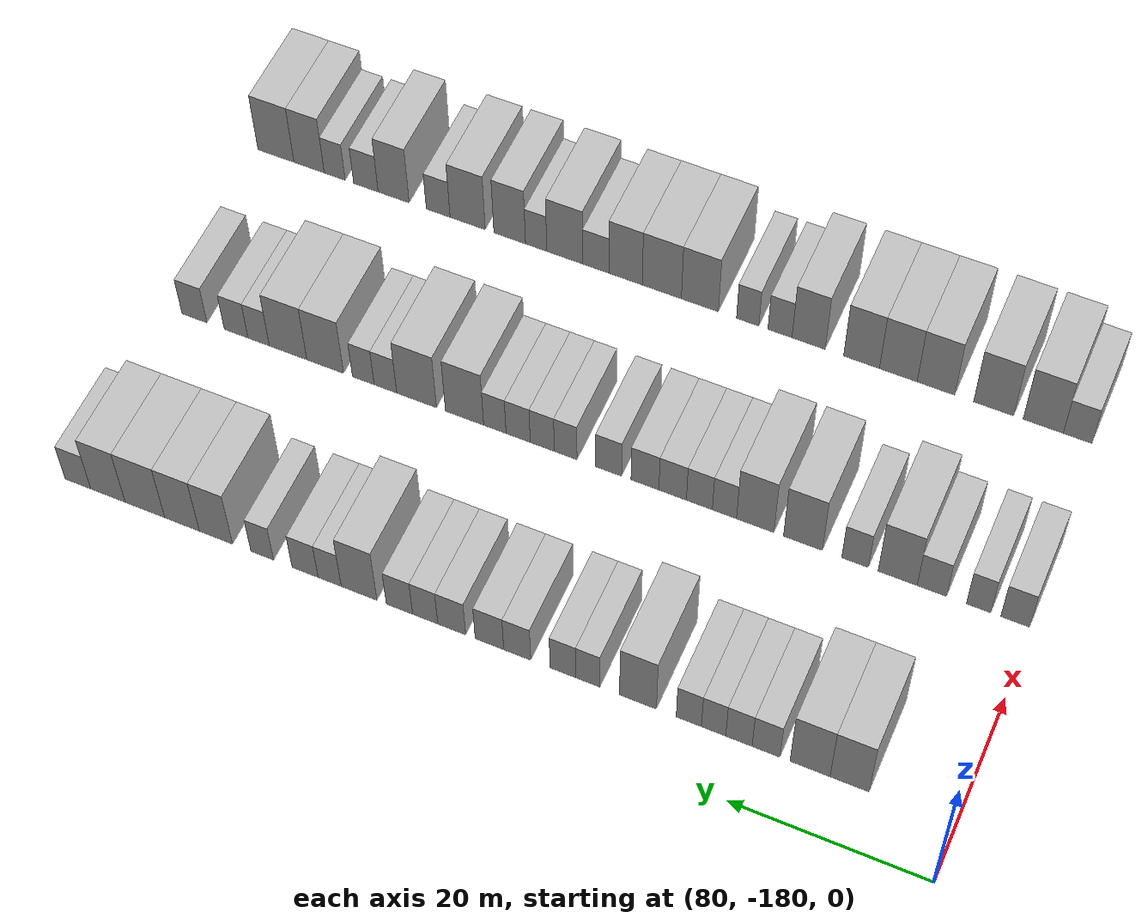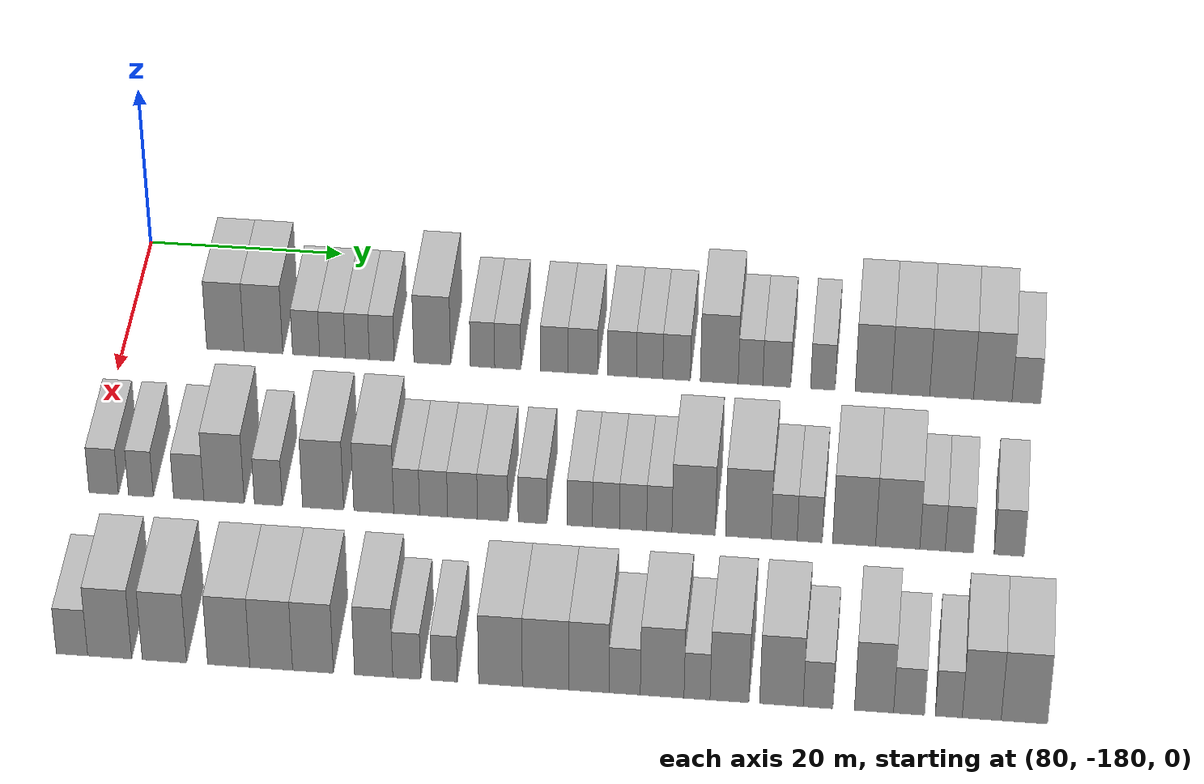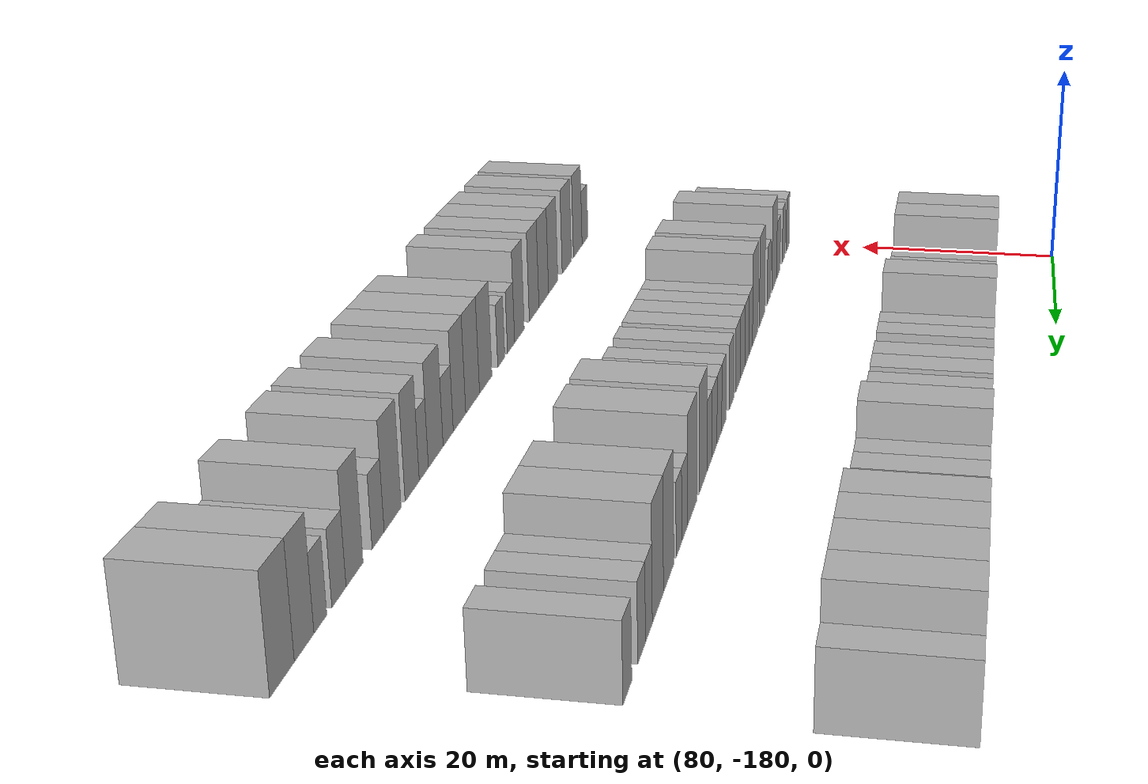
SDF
<sdf version="1.6">
 <world name="default">
  <model name="building_619">
   <static>1</static>
   <pose>91.0000 -169.6793 0 0.000000 0.000000 0.000000</pose>
   <link name="link">
    <pose>0 0 4.50 0 0 0</pose>
    <collision name="collision"><geometry><box><size>10.0000 3.8224 9.0000</size></box></geometry></collision>
    <visual name="visual">
     <cast_shadows>0</cast_shadows>
     <geometry><box><size>10.0000 3.8224 9.0000</size></box></geometry>
     <material>
      <script>
       <uri>model://HANNAS_wall/materials/scripts</uri>
       <uri>model://HANNAS_wall/materials/textures</uri>
       <name>vrc/HANNAS_wall</name>
      </script>
     </material>
    </visual>
   </link>
  </model>
  <model name="building_620">
   <static>1</static>
   <pose>91.0000 -165.8013 0 0.000000 0.000000 0.000000</pose>
   <link name="link">
    <pose>0 0 4.50 0 0 0</pose>
    <collision name="collision"><geometry><box><size>10.0000 3.9335 9.0000</size></box></geometry></collision>
    <visual name="visual">
     <cast_shadows>0</cast_shadows>
     <geometry><box><size>10.0000 3.9335 9.0000</size></box></geometry>
     <material>
      <script>
       <uri>model://HANNAS_wall/materials/scripts</uri>
       <uri>model://HANNAS_wall/materials/textures</uri>
       <name>vrc/HANNAS_wall</name>
      </script>
     </material>
    </visual>
   </link>
  </model>
  <model name="building_621">
   <static>1</static>
   <pose>91.0000 -161.4540 0 0.000000 0.000000 0.000000</pose>
   <link name="link">
    <pose>0 0 3.00 0 0 0</pose>
    <collision name="collision"><geometry><box><size>10.0000 2.7611 6.0000</size></box></geometry></collision>
    <visual name="visual">
     <cast_shadows>0</cast_shadows>
     <geometry><box><size>10.0000 2.7611 6.0000</size></box></geometry>
     <material>
      <script>
       <uri>model://HANNAS_wall/materials/scripts</uri>
       <uri>model://HANNAS_wall/materials/textures</uri>
       <name>vrc/HANNAS_wall</name>
      </script>
     </material>
    </visual>
   </link>
  </model>
  <model name="building_622">
   <static>1</static>
   <pose>91.0000 -158.7608 0 0.000000 0.000000 0.000000</pose>
   <link name="link">
    <pose>0 0 3.00 0 0 0</pose>
    <collision name="collision"><geometry><box><size>10.0000 2.6254 6.0000</size></box></geometry></collision>
    <visual name="visual">
     <cast_shadows>0</cast_shadows>
     <geometry><box><size>10.0000 2.6254 6.0000</size></box></geometry>
     <material>
      <script>
       <uri>model://HANNAS_wall/materials/scripts</uri>
       <uri>model://HANNAS_wall/materials/textures</uri>
       <name>vrc/HANNAS_wall</name>
      </script>
     </material>
    </visual>
   </link>
  </model>
  <model name="building_623">
   <static>1</static>
   <pose>91.0000 -156.2324 0 0.000000 0.000000 0.000000</pose>
   <link name="link">
    <pose>0 0 3.00 0 0 0</pose>
    <collision name="collision"><geometry><box><size>10.0000 2.4313 6.0000</size></box></geometry></collision>
    <visual name="visual">
     <cast_shadows>0</cast_shadows>
     <geometry><box><size>10.0000 2.4313 6.0000</size></box></geometry>
     <material>
      <script>
       <uri>model://HANNAS_wall/materials/scripts</uri>
       <uri>model://HANNAS_wall/materials/textures</uri>
       <name>vrc/HANNAS_wall</name>
      </script>
     </material>
    </visual>
   </link>
  </model>
  <model name="building_624">
   <static>1</static>
   <pose>91.0000 -153.7548 0 0.000000 0.000000 0.000000</pose>
   <link name="link">
    <pose>0 0 3.00 0 0 0</pose>
    <collision name="collision"><geometry><box><size>10.0000 2.5239 6.0000</size></box></geometry></collision>
    <visual name="visual">
     <cast_shadows>0</cast_shadows>
     <geometry><box><size>10.0000 2.5239 6.0000</size></box></geometry>
     <material>
      <script>
       <uri>model://HANNAS_wall/materials/scripts</uri>
       <uri>model://HANNAS_wall/materials/textures</uri>
       <name>vrc/HANNAS_wall</name>
      </script>
     </material>
    </visual>
   </link>
  </model>
  <model name="building_625">
   <static>1</static>
   <pose>91.0000 -148.6278 0 0.000000 0.000000 0.000000</pose>
   <link name="link">
    <pose>0 0 4.50 0 0 0</pose>
    <collision name="collision"><geometry><box><size>10.0000 3.7301 9.0000</size></box></geometry></collision>
    <visual name="visual">
     <cast_shadows>0</cast_shadows>
     <geometry><box><size>10.0000 3.7301 9.0000</size></box></geometry>
     <material>
      <script>
       <uri>model://HANNAS_wall/materials/scripts</uri>
       <uri>model://HANNAS_wall/materials/textures</uri>
       <name>vrc/HANNAS_wall</name>
      </script>
     </material>
    </visual>
   </link>
  </model>
  <model name="building_626">
   <static>1</static>
   <pose>91.0000 -143.5301 0 0.000000 0.000000 0.000000</pose>
   <link name="link">
    <pose>0 0 3.00 0 0 0</pose>
    <collision name="collision"><geometry><box><size>10.0000 2.4655 6.0000</size></box></geometry></collision>
    <visual name="visual">
     <cast_shadows>0</cast_shadows>
     <geometry><box><size>10.0000 2.4655 6.0000</size></box></geometry>
     <material>
      <script>
       <uri>model://HANNAS_wall/materials/scripts</uri>
       <uri>model://HANNAS_wall/materials/textures</uri>
       <name>vrc/HANNAS_wall</name>
      </script>
     </material>
    </visual>
   </link>
  </model>
  <model name="building_627">
   <static>1</static>
   <pose>91.0000 -140.9779 0 0.000000 0.000000 0.000000</pose>
   <link name="link">
    <pose>0 0 3.00 0 0 0</pose>
    <collision name="collision"><geometry><box><size>10.0000 2.6389 6.0000</size></box></geometry></collision>
    <visual name="visual">
     <cast_shadows>0</cast_shadows>
     <geometry><box><size>10.0000 2.6389 6.0000</size></box></geometry>
     <material>
      <script>
       <uri>model://HANNAS_wall/materials/scripts</uri>
       <uri>model://HANNAS_wall/materials/textures</uri>
       <name>vrc/HANNAS_wall</name>
      </script>
     </material>
    </visual>
   </link>
  </model>
  <model name="building_628">
   <static>1</static>
   <pose>91.0000 -136.2574 0 0.000000 0.000000 0.000000</pose>
   <link name="link">
    <pose>0 0 3.00 0 0 0</pose>
    <collision name="collision"><geometry><box><size>10.0000 2.8020 6.0000</size></box></geometry></collision>
    <visual name="visual">
     <cast_shadows>0</cast_shadows>
     <geometry><box><size>10.0000 2.8020 6.0000</size></box></geometry>
     <material>
      <script>
       <uri>model://HANNAS_wall/materials/scripts</uri>
       <uri>model://HANNAS_wall/materials/textures</uri>
       <name>vrc/HANNAS_wall</name>
      </script>
     </material>
    </visual>
   </link>
  </model>
  <model name="building_629">
   <static>1</static>
   <pose>91.0000 -133.3731 0 0.000000 0.000000 0.000000</pose>
   <link name="link">
    <pose>0 0 3.00 0 0 0</pose>
    <collision name="collision"><geometry><box><size>10.0000 2.9665 6.0000</size></box></geometry></collision>
    <visual name="visual">
     <cast_shadows>0</cast_shadows>
     <geometry><box><size>10.0000 2.9665 6.0000</size></box></geometry>
     <material>
      <script>
       <uri>model://HANNAS_wall/materials/scripts</uri>
       <uri>model://HANNAS_wall/materials/textures</uri>
       <name>vrc/HANNAS_wall</name>
      </script>
     </material>
    </visual>
   </link>
  </model>
  <model name="building_630">
   <static>1</static>
   <pose>91.0000 -129.4309 0 0.000000 0.000000 0.000000</pose>
   <link name="link">
    <pose>0 0 3.00 0 0 0</pose>
    <collision name="collision"><geometry><box><size>10.0000 2.9178 6.0000</size></box></geometry></collision>
    <visual name="visual">
     <cast_shadows>0</cast_shadows>
     <geometry><box><size>10.0000 2.9178 6.0000</size></box></geometry>
     <material>
      <script>
       <uri>model://HANNAS_wall/materials/scripts</uri>
       <uri>model://HANNAS_wall/materials/textures</uri>
       <name>vrc/HANNAS_wall</name>
      </script>
     </material>
    </visual>
   </link>
  </model>
  <model name="building_631">
   <static>1</static>
   <pose>91.0000 -126.6465 0 0.000000 0.000000 0.000000</pose>
   <link name="link">
    <pose>0 0 3.00 0 0 0</pose>
    <collision name="collision"><geometry><box><size>10.0000 2.6511 6.0000</size></box></geometry></collision>
    <visual name="visual">
     <cast_shadows>0</cast_shadows>
     <geometry><box><size>10.0000 2.6511 6.0000</size></box></geometry>
     <material>
      <script>
       <uri>model://HANNAS_wall/materials/scripts</uri>
       <uri>model://HANNAS_wall/materials/textures</uri>
       <name>vrc/HANNAS_wall</name>
      </script>
     </material>
    </visual>
   </link>
  </model>
  <model name="building_632">
   <static>1</static>
   <pose>91.0000 -123.9323 0 0.000000 0.000000 0.000000</pose>
   <link name="link">
    <pose>0 0 3.00 0 0 0</pose>
    <collision name="collision"><geometry><box><size>10.0000 2.7771 6.0000</size></box></geometry></collision>
    <visual name="visual">
     <cast_shadows>0</cast_shadows>
     <geometry><box><size>10.0000 2.7771 6.0000</size></box></geometry>
     <material>
      <script>
       <uri>model://HANNAS_wall/materials/scripts</uri>
       <uri>model://HANNAS_wall/materials/textures</uri>
       <name>vrc/HANNAS_wall</name>
      </script>
     </material>
    </visual>
   </link>
  </model>
  <model name="building_633">
   <static>1</static>
   <pose>91.0000 -119.6410 0 0.000000 0.000000 0.000000</pose>
   <link name="link">
    <pose>0 0 4.50 0 0 0</pose>
    <collision name="collision"><geometry><box><size>10.0000 3.8055 9.0000</size></box></geometry></collision>
    <visual name="visual">
     <cast_shadows>0</cast_shadows>
     <geometry><box><size>10.0000 3.8055 9.0000</size></box></geometry>
     <material>
      <script>
       <uri>model://HANNAS_wall/materials/scripts</uri>
       <uri>model://HANNAS_wall/materials/textures</uri>
       <name>vrc/HANNAS_wall</name>
      </script>
     </material>
    </visual>
   </link>
  </model>
  <model name="building_634">
   <static>1</static>
   <pose>91.0000 -116.4988 0 0.000000 0.000000 0.000000</pose>
   <link name="link">
    <pose>0 0 3.00 0 0 0</pose>
    <collision name="collision"><geometry><box><size>10.0000 2.4789 6.0000</size></box></geometry></collision>
    <visual name="visual">
     <cast_shadows>0</cast_shadows>
     <geometry><box><size>10.0000 2.4789 6.0000</size></box></geometry>
     <material>
      <script>
       <uri>model://HANNAS_wall/materials/scripts</uri>
       <uri>model://HANNAS_wall/materials/textures</uri>
       <name>vrc/HANNAS_wall</name>
      </script>
     </material>
    </visual>
   </link>
  </model>
  <model name="building_635">
   <static>1</static>
   <pose>91.0000 -113.8618 0 0.000000 0.000000 0.000000</pose>
   <link name="link">
    <pose>0 0 3.00 0 0 0</pose>
    <collision name="collision"><geometry><box><size>10.0000 2.7952 6.0000</size></box></geometry></collision>
    <visual name="visual">
     <cast_shadows>0</cast_shadows>
     <geometry><box><size>10.0000 2.7952 6.0000</size></box></geometry>
     <material>
      <script>
       <uri>model://HANNAS_wall/materials/scripts</uri>
       <uri>model://HANNAS_wall/materials/textures</uri>
       <name>vrc/HANNAS_wall</name>
      </script>
     </material>
    </visual>
   </link>
  </model>
  <model name="building_636">
   <static>1</static>
   <pose>91.0000 -109.2357 0 0.000000 0.000000 0.000000</pose>
   <link name="link">
    <pose>0 0 3.00 0 0 0</pose>
    <collision name="collision"><geometry><box><size>10.0000 2.4570 6.0000</size></box></geometry></collision>
    <visual name="visual">
     <cast_shadows>0</cast_shadows>
     <geometry><box><size>10.0000 2.4570 6.0000</size></box></geometry>
     <material>
      <script>
       <uri>model://HANNAS_wall/materials/scripts</uri>
       <uri>model://HANNAS_wall/materials/textures</uri>
       <name>vrc/HANNAS_wall</name>
      </script>
     </material>
    </visual>
   </link>
  </model>
  <model name="building_637">
   <static>1</static>
   <pose>91.0000 -104.1882 0 0.000000 0.000000 0.000000</pose>
   <link name="link">
    <pose>0 0 4.50 0 0 0</pose>
    <collision name="collision"><geometry><box><size>10.0000 3.6380 9.0000</size></box></geometry></collision>
    <visual name="visual">
     <cast_shadows>0</cast_shadows>
     <geometry><box><size>10.0000 3.6380 9.0000</size></box></geometry>
     <material>
      <script>
       <uri>model://HANNAS_wall/materials/scripts</uri>
       <uri>model://HANNAS_wall/materials/textures</uri>
       <name>vrc/HANNAS_wall</name>
      </script>
     </material>
    </visual>
   </link>
  </model>
  <model name="building_638">
   <static>1</static>
   <pose>91.0000 -100.4628 0 0.000000 0.000000 0.000000</pose>
   <link name="link">
    <pose>0 0 4.50 0 0 0</pose>
    <collision name="collision"><geometry><box><size>10.0000 3.8127 9.0000</size></box></geometry></collision>
    <visual name="visual">
     <cast_shadows>0</cast_shadows>
     <geometry><box><size>10.0000 3.8127 9.0000</size></box></geometry>
     <material>
      <script>
       <uri>model://HANNAS_wall/materials/scripts</uri>
       <uri>model://HANNAS_wall/materials/textures</uri>
       <name>vrc/HANNAS_wall</name>
      </script>
     </material>
    </visual>
   </link>
  </model>
  <model name="building_639">
   <static>1</static>
   <pose>91.0000 -96.3690 0 0.000000 0.000000 0.000000</pose>
   <link name="link">
    <pose>0 0 4.50 0 0 0</pose>
    <collision name="collision"><geometry><box><size>10.0000 4.3750 9.0000</size></box></geometry></collision>
    <visual name="visual">
     <cast_shadows>0</cast_shadows>
     <geometry><box><size>10.0000 4.3750 9.0000</size></box></geometry>
     <material>
      <script>
       <uri>model://HANNAS_wall/materials/scripts</uri>
       <uri>model://HANNAS_wall/materials/textures</uri>
       <name>vrc/HANNAS_wall</name>
      </script>
     </material>
    </visual>
   </link>
  </model>
  <model name="building_640">
   <static>1</static>
   <pose>91.0000 -92.2633 0 0.000000 0.000000 0.000000</pose>
   <link name="link">
    <pose>0 0 4.50 0 0 0</pose>
    <collision name="collision"><geometry><box><size>10.0000 3.8365 9.0000</size></box></geometry></collision>
    <visual name="visual">
     <cast_shadows>0</cast_shadows>
     <geometry><box><size>10.0000 3.8365 9.0000</size></box></geometry>
     <material>
      <script>
       <uri>model://HANNAS_wall/materials/scripts</uri>
       <uri>model://HANNAS_wall/materials/textures</uri>
       <name>vrc/HANNAS_wall</name>
      </script>
     </material>
    </visual>
   </link>
  </model>
  <model name="building_641">
   <static>1</static>
   <pose>91.0000 -88.9086 0 0.000000 0.000000 0.000000</pose>
   <link name="link">
    <pose>0 0 3.00 0 0 0</pose>
    <collision name="collision"><geometry><box><size>10.0000 2.8729 6.0000</size></box></geometry></collision>
    <visual name="visual">
     <cast_shadows>0</cast_shadows>
     <geometry><box><size>10.0000 2.8729 6.0000</size></box></geometry>
     <material>
      <script>
       <uri>model://HANNAS_wall/materials/scripts</uri>
       <uri>model://HANNAS_wall/materials/textures</uri>
       <name>vrc/HANNAS_wall</name>
      </script>
     </material>
    </visual>
   </link>
  </model>
  <model name="building_803">
   <static>1</static>
   <pose>113.0000 -178.2701 0 0.000000 0.000000 0.000000</pose>
   <link name="link">
    <pose>0 0 3.00 0 0 0</pose>
    <collision name="collision"><geometry><box><size>10.0000 2.8882 6.0000</size></box></geometry></collision>
    <visual name="visual">
     <cast_shadows>0</cast_shadows>
     <geometry><box><size>10.0000 2.8882 6.0000</size></box></geometry>
     <material>
      <script>
       <uri>model://HANNAS_wall/materials/scripts</uri>
       <uri>model://HANNAS_wall/materials/textures</uri>
       <name>vrc/HANNAS_wall</name>
      </script>
     </material>
    </visual>
   </link>
  </model>
  <model name="building_804">
   <static>1</static>
   <pose>113.0000 -174.5984 0 0.000000 0.000000 0.000000</pose>
   <link name="link">
    <pose>0 0 3.00 0 0 0</pose>
    <collision name="collision"><geometry><box><size>10.0000 2.4551 6.0000</size></box></geometry></collision>
    <visual name="visual">
     <cast_shadows>0</cast_shadows>
     <geometry><box><size>10.0000 2.4551 6.0000</size></box></geometry>
     <material>
      <script>
       <uri>model://HANNAS_wall/materials/scripts</uri>
       <uri>model://HANNAS_wall/materials/textures</uri>
       <name>vrc/HANNAS_wall</name>
      </script>
     </material>
    </visual>
   </link>
  </model>
  <model name="building_805">
   <static>1</static>
   <pose>113.0000 -169.8776 0 0.000000 0.000000 0.000000</pose>
   <link name="link">
    <pose>0 0 3.00 0 0 0</pose>
    <collision name="collision"><geometry><box><size>10.0000 2.9865 6.0000</size></box></geometry></collision>
    <visual name="visual">
     <cast_shadows>0</cast_shadows>
     <geometry><box><size>10.0000 2.9865 6.0000</size></box></geometry>
     <material>
      <script>
       <uri>model://HANNAS_wall/materials/scripts</uri>
       <uri>model://HANNAS_wall/materials/textures</uri>
       <name>vrc/HANNAS_wall</name>
      </script>
     </material>
    </visual>
   </link>
  </model>
  <model name="building_806">
   <static>1</static>
   <pose>113.0000 -166.3971 0 0.000000 0.000000 0.000000</pose>
   <link name="link">
    <pose>0 0 4.50 0 0 0</pose>
    <collision name="collision"><geometry><box><size>10.0000 3.9746 9.0000</size></box></geometry></collision>
    <visual name="visual">
     <cast_shadows>0</cast_shadows>
     <geometry><box><size>10.0000 3.9746 9.0000</size></box></geometry>
     <material>
      <script>
       <uri>model://HANNAS_wall/materials/scripts</uri>
       <uri>model://HANNAS_wall/materials/textures</uri>
       <name>vrc/HANNAS_wall</name>
      </script>
     </material>
    </visual>
   </link>
  </model>
  <model name="building_807">
   <static>1</static>
   <pose>113.0000 -162.0422 0 0.000000 0.000000 0.000000</pose>
   <link name="link">
    <pose>0 0 3.00 0 0 0</pose>
    <collision name="collision"><geometry><box><size>10.0000 2.7352 6.0000</size></box></geometry></collision>
    <visual name="visual">
     <cast_shadows>0</cast_shadows>
     <geometry><box><size>10.0000 2.7352 6.0000</size></box></geometry>
     <material>
      <script>
       <uri>model://HANNAS_wall/materials/scripts</uri>
       <uri>model://HANNAS_wall/materials/textures</uri>
       <name>vrc/HANNAS_wall</name>
      </script>
     </material>
    </visual>
   </link>
  </model>
  <model name="building_808">
   <static>1</static>
   <pose>113.0000 -156.6598 0 0.000000 0.000000 0.000000</pose>
   <link name="link">
    <pose>0 0 4.50 0 0 0</pose>
    <collision name="collision"><geometry><box><size>10.0000 4.0296 9.0000</size></box></geometry></collision>
    <visual name="visual">
     <cast_shadows>0</cast_shadows>
     <geometry><box><size>10.0000 4.0296 9.0000</size></box></geometry>
     <material>
      <script>
       <uri>model://HANNAS_wall/materials/scripts</uri>
       <uri>model://HANNAS_wall/materials/textures</uri>
       <name>vrc/HANNAS_wall</name>
      </script>
     </material>
    </visual>
   </link>
  </model>
  <model name="building_809">
   <static>1</static>
   <pose>113.0000 -151.6900 0 0.000000 0.000000 0.000000</pose>
   <link name="link">
    <pose>0 0 4.50 0 0 0</pose>
    <collision name="collision"><geometry><box><size>10.0000 3.9100 9.0000</size></box></geometry></collision>
    <visual name="visual">
     <cast_shadows>0</cast_shadows>
     <geometry><box><size>10.0000 3.9100 9.0000</size></box></geometry>
     <material>
      <script>
       <uri>model://HANNAS_wall/materials/scripts</uri>
       <uri>model://HANNAS_wall/materials/textures</uri>
       <name>vrc/HANNAS_wall</name>
      </script>
     </material>
    </visual>
   </link>
  </model>
  <model name="building_810">
   <static>1</static>
   <pose>113.0000 -148.4684 0 0.000000 0.000000 0.000000</pose>
   <link name="link">
    <pose>0 0 3.00 0 0 0</pose>
    <collision name="collision"><geometry><box><size>10.0000 2.5333 6.0000</size></box></geometry></collision>
    <visual name="visual">
     <cast_shadows>0</cast_shadows>
     <geometry><box><size>10.0000 2.5333 6.0000</size></box></geometry>
     <material>
      <script>
       <uri>model://HANNAS_wall/materials/scripts</uri>
       <uri>model://HANNAS_wall/materials/textures</uri>
       <name>vrc/HANNAS_wall</name>
      </script>
     </material>
    </visual>
   </link>
  </model>
  <model name="building_811">
   <static>1</static>
   <pose>113.0000 -145.8299 0 0.000000 0.000000 0.000000</pose>
   <link name="link">
    <pose>0 0 3.00 0 0 0</pose>
    <collision name="collision"><geometry><box><size>10.0000 2.7437 6.0000</size></box></geometry></collision>
    <visual name="visual">
     <cast_shadows>0</cast_shadows>
     <geometry><box><size>10.0000 2.7437 6.0000</size></box></geometry>
     <material>
      <script>
       <uri>model://HANNAS_wall/materials/scripts</uri>
       <uri>model://HANNAS_wall/materials/textures</uri>
       <name>vrc/HANNAS_wall</name>
      </script>
     </material>
    </visual>
   </link>
  </model>
  <model name="building_812">
   <static>1</static>
   <pose>113.0000 -142.9987 0 0.000000 0.000000 0.000000</pose>
   <link name="link">
    <pose>0 0 3.00 0 0 0</pose>
    <collision name="collision"><geometry><box><size>10.0000 2.9188 6.0000</size></box></geometry></collision>
    <visual name="visual">
     <cast_shadows>0</cast_shadows>
     <geometry><box><size>10.0000 2.9188 6.0000</size></box></geometry>
     <material>
      <script>
       <uri>model://HANNAS_wall/materials/scripts</uri>
       <uri>model://HANNAS_wall/materials/textures</uri>
       <name>vrc/HANNAS_wall</name>
      </script>
     </material>
    </visual>
   </link>
  </model>
  <model name="building_813">
   <static>1</static>
   <pose>113.0000 -140.0544 0 0.000000 0.000000 0.000000</pose>
   <link name="link">
    <pose>0 0 3.00 0 0 0</pose>
    <collision name="collision"><geometry><box><size>10.0000 2.9698 6.0000</size></box></geometry></collision>
    <visual name="visual">
     <cast_shadows>0</cast_shadows>
     <geometry><box><size>10.0000 2.9698 6.0000</size></box></geometry>
     <material>
      <script>
       <uri>model://HANNAS_wall/materials/scripts</uri>
       <uri>model://HANNAS_wall/materials/textures</uri>
       <name>vrc/HANNAS_wall</name>
      </script>
     </material>
    </visual>
   </link>
  </model>
  <model name="building_814">
   <static>1</static>
   <pose>113.0000 -136.1741 0 0.000000 0.000000 0.000000</pose>
   <link name="link">
    <pose>0 0 3.00 0 0 0</pose>
    <collision name="collision"><geometry><box><size>10.0000 2.7909 6.0000</size></box></geometry></collision>
    <visual name="visual">
     <cast_shadows>0</cast_shadows>
     <geometry><box><size>10.0000 2.7909 6.0000</size></box></geometry>
     <material>
      <script>
       <uri>model://HANNAS_wall/materials/scripts</uri>
       <uri>model://HANNAS_wall/materials/textures</uri>
       <name>vrc/HANNAS_wall</name>
      </script>
     </material>
    </visual>
   </link>
  </model>
  <model name="building_815">
   <static>1</static>
   <pose>113.0000 -131.5556 0 0.000000 0.000000 0.000000</pose>
   <link name="link">
    <pose>0 0 3.00 0 0 0</pose>
    <collision name="collision"><geometry><box><size>10.0000 2.4462 6.0000</size></box></geometry></collision>
    <visual name="visual">
     <cast_shadows>0</cast_shadows>
     <geometry><box><size>10.0000 2.4462 6.0000</size></box></geometry>
     <material>
      <script>
       <uri>model://HANNAS_wall/materials/scripts</uri>
       <uri>model://HANNAS_wall/materials/textures</uri>
       <name>vrc/HANNAS_wall</name>
      </script>
     </material>
    </visual>
   </link>
  </model>
  <model name="building_816">
   <static>1</static>
   <pose>113.0000 -129.0223 0 0.000000 0.000000 0.000000</pose>
   <link name="link">
    <pose>0 0 3.00 0 0 0</pose>
    <collision name="collision"><geometry><box><size>10.0000 2.6204 6.0000</size></box></geometry></collision>
    <visual name="visual">
     <cast_shadows>0</cast_shadows>
     <geometry><box><size>10.0000 2.6204 6.0000</size></box></geometry>
     <material>
      <script>
       <uri>model://HANNAS_wall/materials/scripts</uri>
       <uri>model://HANNAS_wall/materials/textures</uri>
       <name>vrc/HANNAS_wall</name>
      </script>
     </material>
    </visual>
   </link>
  </model>
  <model name="building_817">
   <static>1</static>
   <pose>113.0000 -126.3937 0 0.000000 0.000000 0.000000</pose>
   <link name="link">
    <pose>0 0 3.00 0 0 0</pose>
    <collision name="collision"><geometry><box><size>10.0000 2.6367 6.0000</size></box></geometry></collision>
    <visual name="visual">
     <cast_shadows>0</cast_shadows>
     <geometry><box><size>10.0000 2.6367 6.0000</size></box></geometry>
     <material>
      <script>
       <uri>model://HANNAS_wall/materials/scripts</uri>
       <uri>model://HANNAS_wall/materials/textures</uri>
       <name>vrc/HANNAS_wall</name>
      </script>
     </material>
    </visual>
   </link>
  </model>
  <model name="building_818">
   <static>1</static>
   <pose>113.0000 -123.8469 0 0.000000 0.000000 0.000000</pose>
   <link name="link">
    <pose>0 0 3.00 0 0 0</pose>
    <collision name="collision"><geometry><box><size>10.0000 2.4569 6.0000</size></box></geometry></collision>
    <visual name="visual">
     <cast_shadows>0</cast_shadows>
     <geometry><box><size>10.0000 2.4569 6.0000</size></box></geometry>
     <material>
      <script>
       <uri>model://HANNAS_wall/materials/scripts</uri>
       <uri>model://HANNAS_wall/materials/textures</uri>
       <name>vrc/HANNAS_wall</name>
      </script>
     </material>
    </visual>
   </link>
  </model>
  <model name="building_819">
   <static>1</static>
   <pose>113.0000 -120.5225 0 0.000000 0.000000 0.000000</pose>
   <link name="link">
    <pose>0 0 4.50 0 0 0</pose>
    <collision name="collision"><geometry><box><size>10.0000 4.1919 9.0000</size></box></geometry></collision>
    <visual name="visual">
     <cast_shadows>0</cast_shadows>
     <geometry><box><size>10.0000 4.1919 9.0000</size></box></geometry>
     <material>
      <script>
       <uri>model://HANNAS_wall/materials/scripts</uri>
       <uri>model://HANNAS_wall/materials/textures</uri>
       <name>vrc/HANNAS_wall</name>
      </script>
     </material>
    </visual>
   </link>
  </model>
  <model name="building_820">
   <static>1</static>
   <pose>113.0000 -115.2175 0 0.000000 0.000000 0.000000</pose>
   <link name="link">
    <pose>0 0 4.50 0 0 0</pose>
    <collision name="collision"><geometry><box><size>10.0000 4.4181 9.0000</size></box></geometry></collision>
    <visual name="visual">
     <cast_shadows>0</cast_shadows>
     <geometry><box><size>10.0000 4.4181 9.0000</size></box></geometry>
     <material>
      <script>
       <uri>model://HANNAS_wall/materials/scripts</uri>
       <uri>model://HANNAS_wall/materials/textures</uri>
       <name>vrc/HANNAS_wall</name>
      </script>
     </material>
    </visual>
   </link>
  </model>
  <model name="building_821">
   <static>1</static>
   <pose>113.0000 -111.7498 0 0.000000 0.000000 0.000000</pose>
   <link name="link">
    <pose>0 0 3.00 0 0 0</pose>
    <collision name="collision"><geometry><box><size>10.0000 2.5172 6.0000</size></box></geometry></collision>
    <visual name="visual">
     <cast_shadows>0</cast_shadows>
     <geometry><box><size>10.0000 2.5172 6.0000</size></box></geometry>
     <material>
      <script>
       <uri>model://HANNAS_wall/materials/scripts</uri>
       <uri>model://HANNAS_wall/materials/textures</uri>
       <name>vrc/HANNAS_wall</name>
      </script>
     </material>
    </visual>
   </link>
  </model>
  <model name="building_822">
   <static>1</static>
   <pose>113.0000 -109.2785 0 0.000000 0.000000 0.000000</pose>
   <link name="link">
    <pose>0 0 3.00 0 0 0</pose>
    <collision name="collision"><geometry><box><size>10.0000 2.4254 6.0000</size></box></geometry></collision>
    <visual name="visual">
     <cast_shadows>0</cast_shadows>
     <geometry><box><size>10.0000 2.4254 6.0000</size></box></geometry>
     <material>
      <script>
       <uri>model://HANNAS_wall/materials/scripts</uri>
       <uri>model://HANNAS_wall/materials/textures</uri>
       <name>vrc/HANNAS_wall</name>
      </script>
     </material>
    </visual>
   </link>
  </model>
  <model name="building_823">
   <static>1</static>
   <pose>113.0000 -104.9915 0 0.000000 0.000000 0.000000</pose>
   <link name="link">
    <pose>0 0 4.50 0 0 0</pose>
    <collision name="collision"><geometry><box><size>10.0000 4.1487 9.0000</size></box></geometry></collision>
    <visual name="visual">
     <cast_shadows>0</cast_shadows>
     <geometry><box><size>10.0000 4.1487 9.0000</size></box></geometry>
     <material>
      <script>
       <uri>model://HANNAS_wall/materials/scripts</uri>
       <uri>model://HANNAS_wall/materials/textures</uri>
       <name>vrc/HANNAS_wall</name>
      </script>
     </material>
    </visual>
   </link>
  </model>
  <model name="building_824">
   <static>1</static>
   <pose>113.0000 -100.7887 0 0.000000 0.000000 0.000000</pose>
   <link name="link">
    <pose>0 0 4.50 0 0 0</pose>
    <collision name="collision"><geometry><box><size>10.0000 4.2570 9.0000</size></box></geometry></collision>
    <visual name="visual">
     <cast_shadows>0</cast_shadows>
     <geometry><box><size>10.0000 4.2570 9.0000</size></box></geometry>
     <material>
      <script>
       <uri>model://HANNAS_wall/materials/scripts</uri>
       <uri>model://HANNAS_wall/materials/textures</uri>
       <name>vrc/HANNAS_wall</name>
      </script>
     </material>
    </visual>
   </link>
  </model>
  <model name="building_825">
   <static>1</static>
   <pose>113.0000 -97.4379 0 0.000000 0.000000 0.000000</pose>
   <link name="link">
    <pose>0 0 3.00 0 0 0</pose>
    <collision name="collision"><geometry><box><size>10.0000 2.4446 6.0000</size></box></geometry></collision>
    <visual name="visual">
     <cast_shadows>0</cast_shadows>
     <geometry><box><size>10.0000 2.4446 6.0000</size></box></geometry>
     <material>
      <script>
       <uri>model://HANNAS_wall/materials/scripts</uri>
       <uri>model://HANNAS_wall/materials/textures</uri>
       <name>vrc/HANNAS_wall</name>
      </script>
     </material>
    </visual>
   </link>
  </model>
  <model name="building_826">
   <static>1</static>
   <pose>113.0000 -94.8599 0 0.000000 0.000000 0.000000</pose>
   <link name="link">
    <pose>0 0 3.00 0 0 0</pose>
    <collision name="collision"><geometry><box><size>10.0000 2.7114 6.0000</size></box></geometry></collision>
    <visual name="visual">
     <cast_shadows>0</cast_shadows>
     <geometry><box><size>10.0000 2.7114 6.0000</size></box></geometry>
     <material>
      <script>
       <uri>model://HANNAS_wall/materials/scripts</uri>
       <uri>model://HANNAS_wall/materials/textures</uri>
       <name>vrc/HANNAS_wall</name>
      </script>
     </material>
    </visual>
   </link>
  </model>
  <model name="building_827">
   <static>1</static>
   <pose>113.0000 -90.0668 0 0.000000 0.000000 0.000000</pose>
   <link name="link">
    <pose>0 0 3.00 0 0 0</pose>
    <collision name="collision"><geometry><box><size>10.0000 2.8748 6.0000</size></box></geometry></collision>
    <visual name="visual">
     <cast_shadows>0</cast_shadows>
     <geometry><box><size>10.0000 2.8748 6.0000</size></box></geometry>
     <material>
      <script>
       <uri>model://HANNAS_wall/materials/scripts</uri>
       <uri>model://HANNAS_wall/materials/textures</uri>
       <name>vrc/HANNAS_wall</name>
      </script>
     </material>
    </visual>
   </link>
  </model>
  <model name="building_998">
   <static>1</static>
   <pose>135.0000 -177.4153 0 0.000000 0.000000 0.000000</pose>
   <link name="link">
    <pose>0 0 3.00 0 0 0</pose>
    <collision name="collision"><geometry><box><size>10.0000 2.9813 6.0000</size></box></geometry></collision>
    <visual name="visual">
     <cast_shadows>0</cast_shadows>
     <geometry><box><size>10.0000 2.9813 6.0000</size></box></geometry>
     <material>
      <script>
       <uri>model://HANNAS_wall/materials/scripts</uri>
       <uri>model://HANNAS_wall/materials/textures</uri>
       <name>vrc/HANNAS_wall</name>
      </script>
     </material>
    </visual>
   </link>
  </model>
  <model name="building_999">
   <static>1</static>
   <pose>135.0000 -173.8310 0 0.000000 0.000000 0.000000</pose>
   <link name="link">
    <pose>0 0 4.50 0 0 0</pose>
    <collision name="collision"><geometry><box><size>10.0000 4.1874 9.0000</size></box></geometry></collision>
    <visual name="visual">
     <cast_shadows>0</cast_shadows>
     <geometry><box><size>10.0000 4.1874 9.0000</size></box></geometry>
     <material>
      <script>
       <uri>model://HANNAS_wall/materials/scripts</uri>
       <uri>model://HANNAS_wall/materials/textures</uri>
       <name>vrc/HANNAS_wall</name>
      </script>
     </material>
    </visual>
   </link>
  </model>
  <model name="building_1000">
   <static>1</static>
   <pose>135.0000 -168.6319 0 0.000000 0.000000 0.000000</pose>
   <link name="link">
    <pose>0 0 4.50 0 0 0</pose>
    <collision name="collision"><geometry><box><size>10.0000 4.2107 9.0000</size></box></geometry></collision>
    <visual name="visual">
     <cast_shadows>0</cast_shadows>
     <geometry><box><size>10.0000 4.2107 9.0000</size></box></geometry>
     <material>
      <script>
       <uri>model://HANNAS_wall/materials/scripts</uri>
       <uri>model://HANNAS_wall/materials/textures</uri>
       <name>vrc/HANNAS_wall</name>
      </script>
     </material>
    </visual>
   </link>
  </model>
  <model name="building_1001">
   <static>1</static>
   <pose>135.0000 -162.5260 0 0.000000 0.000000 0.000000</pose>
   <link name="link">
    <pose>0 0 4.50 0 0 0</pose>
    <collision name="collision"><geometry><box><size>10.0000 4.0013 9.0000</size></box></geometry></collision>
    <visual name="visual">
     <cast_shadows>0</cast_shadows>
     <geometry><box><size>10.0000 4.0013 9.0000</size></box></geometry>
     <material>
      <script>
       <uri>model://HANNAS_wall/materials/scripts</uri>
       <uri>model://HANNAS_wall/materials/textures</uri>
       <name>vrc/HANNAS_wall</name>
      </script>
     </material>
    </visual>
   </link>
  </model>
  <model name="building_1002">
   <static>1</static>
   <pose>135.0000 -158.5060 0 0.000000 0.000000 0.000000</pose>
   <link name="link">
    <pose>0 0 4.50 0 0 0</pose>
    <collision name="collision"><geometry><box><size>10.0000 4.0388 9.0000</size></box></geometry></collision>
    <visual name="visual">
     <cast_shadows>0</cast_shadows>
     <geometry><box><size>10.0000 4.0388 9.0000</size></box></geometry>
     <material>
      <script>
       <uri>model://HANNAS_wall/materials/scripts</uri>
       <uri>model://HANNAS_wall/materials/textures</uri>
       <name>vrc/HANNAS_wall</name>
      </script>
     </material>
    </visual>
   </link>
  </model>
  <model name="building_1003">
   <static>1</static>
   <pose>135.0000 -154.5582 0 0.000000 0.000000 0.000000</pose>
   <link name="link">
    <pose>0 0 4.50 0 0 0</pose>
    <collision name="collision"><geometry><box><size>10.0000 3.8567 9.0000</size></box></geometry></collision>
    <visual name="visual">
     <cast_shadows>0</cast_shadows>
     <geometry><box><size>10.0000 3.8567 9.0000</size></box></geometry>
     <material>
      <script>
       <uri>model://HANNAS_wall/materials/scripts</uri>
       <uri>model://HANNAS_wall/materials/textures</uri>
       <name>vrc/HANNAS_wall</name>
      </script>
     </material>
    </visual>
   </link>
  </model>
  <model name="building_1004">
   <static>1</static>
   <pose>135.0000 -148.8262 0 0.000000 0.000000 0.000000</pose>
   <link name="link">
    <pose>0 0 4.50 0 0 0</pose>
    <collision name="collision"><geometry><box><size>10.0000 3.6073 9.0000</size></box></geometry></collision>
    <visual name="visual">
     <cast_shadows>0</cast_shadows>
     <geometry><box><size>10.0000 3.6073 9.0000</size></box></geometry>
     <material>
      <script>
       <uri>model://HANNAS_wall/materials/scripts</uri>
       <uri>model://HANNAS_wall/materials/textures</uri>
       <name>vrc/HANNAS_wall</name>
      </script>
     </material>
    </visual>
   </link>
  </model>
  <model name="building_1005">
   <static>1</static>
   <pose>135.0000 -145.7101 0 0.000000 0.000000 0.000000</pose>
   <link name="link">
    <pose>0 0 3.00 0 0 0</pose>
    <collision name="collision"><geometry><box><size>10.0000 2.6249 6.0000</size></box></geometry></collision>
    <visual name="visual">
     <cast_shadows>0</cast_shadows>
     <geometry><box><size>10.0000 2.6249 6.0000</size></box></geometry>
     <material>
      <script>
       <uri>model://HANNAS_wall/materials/scripts</uri>
       <uri>model://HANNAS_wall/materials/textures</uri>
       <name>vrc/HANNAS_wall</name>
      </script>
     </material>
    </visual>
   </link>
  </model>
  <model name="building_1006">
   <static>1</static>
   <pose>135.0000 -142.1711 0 0.000000 0.000000 0.000000</pose>
   <link name="link">
    <pose>0 0 3.00 0 0 0</pose>
    <collision name="collision"><geometry><box><size>10.0000 2.4531 6.0000</size></box></geometry></collision>
    <visual name="visual">
     <cast_shadows>0</cast_shadows>
     <geometry><box><size>10.0000 2.4531 6.0000</size></box></geometry>
     <material>
      <script>
       <uri>model://HANNAS_wall/materials/scripts</uri>
       <uri>model://HANNAS_wall/materials/textures</uri>
       <name>vrc/HANNAS_wall</name>
      </script>
     </material>
    </visual>
   </link>
  </model>
  <model name="building_1007">
   <static>1</static>
   <pose>135.0000 -136.8922 0 0.000000 0.000000 0.000000</pose>
   <link name="link">
    <pose>0 0 4.50 0 0 0</pose>
    <collision name="collision"><geometry><box><size>10.0000 4.1045 9.0000</size></box></geometry></collision>
    <visual name="visual">
     <cast_shadows>0</cast_shadows>
     <geometry><box><size>10.0000 4.1045 9.0000</size></box></geometry>
     <material>
      <script>
       <uri>model://HANNAS_wall/materials/scripts</uri>
       <uri>model://HANNAS_wall/materials/textures</uri>
       <name>vrc/HANNAS_wall</name>
      </script>
     </material>
    </visual>
   </link>
  </model>
  <model name="building_1008">
   <static>1</static>
   <pose>135.0000 -132.6592 0 0.000000 0.000000 0.000000</pose>
   <link name="link">
    <pose>0 0 4.50 0 0 0</pose>
    <collision name="collision"><geometry><box><size>10.0000 4.3615 9.0000</size></box></geometry></collision>
    <visual name="visual">
     <cast_shadows>0</cast_shadows>
     <geometry><box><size>10.0000 4.3615 9.0000</size></box></geometry>
     <material>
      <script>
       <uri>model://HANNAS_wall/materials/scripts</uri>
       <uri>model://HANNAS_wall/materials/textures</uri>
       <name>vrc/HANNAS_wall</name>
      </script>
     </material>
    </visual>
   </link>
  </model>
  <model name="building_1009">
   <static>1</static>
   <pose>135.0000 -128.6032 0 0.000000 0.000000 0.000000</pose>
   <link name="link">
    <pose>0 0 4.50 0 0 0</pose>
    <collision name="collision"><geometry><box><size>10.0000 3.7506 9.0000</size></box></geometry></collision>
    <visual name="visual">
     <cast_shadows>0</cast_shadows>
     <geometry><box><size>10.0000 3.7506 9.0000</size></box></geometry>
     <material>
      <script>
       <uri>model://HANNAS_wall/materials/scripts</uri>
       <uri>model://HANNAS_wall/materials/textures</uri>
       <name>vrc/HANNAS_wall</name>
      </script>
     </material>
    </visual>
   </link>
  </model>
  <model name="building_1010">
   <static>1</static>
   <pose>135.0000 -125.2605 0 0.000000 0.000000 0.000000</pose>
   <link name="link">
    <pose>0 0 3.00 0 0 0</pose>
    <collision name="collision"><geometry><box><size>10.0000 2.9347 6.0000</size></box></geometry></collision>
    <visual name="visual">
     <cast_shadows>0</cast_shadows>
     <geometry><box><size>10.0000 2.9347 6.0000</size></box></geometry>
     <material>
      <script>
       <uri>model://HANNAS_wall/materials/scripts</uri>
       <uri>model://HANNAS_wall/materials/textures</uri>
       <name>vrc/HANNAS_wall</name>
      </script>
     </material>
    </visual>
   </link>
  </model>
  <model name="building_1011">
   <static>1</static>
   <pose>135.0000 -121.7515 0 0.000000 0.000000 0.000000</pose>
   <link name="link">
    <pose>0 0 4.50 0 0 0</pose>
    <collision name="collision"><geometry><box><size>10.0000 4.0833 9.0000</size></box></geometry></collision>
    <visual name="visual">
     <cast_shadows>0</cast_shadows>
     <geometry><box><size>10.0000 4.0833 9.0000</size></box></geometry>
     <material>
      <script>
       <uri>model://HANNAS_wall/materials/scripts</uri>
       <uri>model://HANNAS_wall/materials/textures</uri>
       <name>vrc/HANNAS_wall</name>
      </script>
     </material>
    </visual>
   </link>
  </model>
  <model name="building_1012">
   <static>1</static>
   <pose>135.0000 -118.4958 0 0.000000 0.000000 0.000000</pose>
   <link name="link">
    <pose>0 0 3.00 0 0 0</pose>
    <collision name="collision"><geometry><box><size>10.0000 2.4281 6.0000</size></box></geometry></collision>
    <visual name="visual">
     <cast_shadows>0</cast_shadows>
     <geometry><box><size>10.0000 2.4281 6.0000</size></box></geometry>
     <material>
      <script>
       <uri>model://HANNAS_wall/materials/scripts</uri>
       <uri>model://HANNAS_wall/materials/textures</uri>
       <name>vrc/HANNAS_wall</name>
      </script>
     </material>
    </visual>
   </link>
  </model>
  <model name="building_1013">
   <static>1</static>
   <pose>135.0000 -115.4700 0 0.000000 0.000000 0.000000</pose>
   <link name="link">
    <pose>0 0 4.50 0 0 0</pose>
    <collision name="collision"><geometry><box><size>10.0000 3.6236 9.0000</size></box></geometry></collision>
    <visual name="visual">
     <cast_shadows>0</cast_shadows>
     <geometry><box><size>10.0000 3.6236 9.0000</size></box></geometry>
     <material>
      <script>
       <uri>model://HANNAS_wall/materials/scripts</uri>
       <uri>model://HANNAS_wall/materials/textures</uri>
       <name>vrc/HANNAS_wall</name>
      </script>
     </material>
    </visual>
   </link>
  </model>
  <model name="building_1014">
   <static>1</static>
   <pose>135.0000 -110.6302 0 0.000000 0.000000 0.000000</pose>
   <link name="link">
    <pose>0 0 4.50 0 0 0</pose>
    <collision name="collision"><geometry><box><size>10.0000 4.0560 9.0000</size></box></geometry></collision>
    <visual name="visual">
     <cast_shadows>0</cast_shadows>
     <geometry><box><size>10.0000 4.0560 9.0000</size></box></geometry>
     <material>
      <script>
       <uri>model://HANNAS_wall/materials/scripts</uri>
       <uri>model://HANNAS_wall/materials/textures</uri>
       <name>vrc/HANNAS_wall</name>
      </script>
     </material>
    </visual>
   </link>
  </model>
  <model name="building_1015">
   <static>1</static>
   <pose>135.0000 -107.2212 0 0.000000 0.000000 0.000000</pose>
   <link name="link">
    <pose>0 0 3.00 0 0 0</pose>
    <collision name="collision"><geometry><box><size>10.0000 2.7619 6.0000</size></box></geometry></collision>
    <visual name="visual">
     <cast_shadows>0</cast_shadows>
     <geometry><box><size>10.0000 2.7619 6.0000</size></box></geometry>
     <material>
      <script>
       <uri>model://HANNAS_wall/materials/scripts</uri>
       <uri>model://HANNAS_wall/materials/textures</uri>
       <name>vrc/HANNAS_wall</name>
      </script>
     </material>
    </visual>
   </link>
  </model>
  <model name="building_1016">
   <static>1</static>
   <pose>135.0000 -102.0250 0 0.000000 0.000000 0.000000</pose>
   <link name="link">
    <pose>0 0 4.50 0 0 0</pose>
    <collision name="collision"><geometry><box><size>10.0000 3.6304 9.0000</size></box></geometry></collision>
    <visual name="visual">
     <cast_shadows>0</cast_shadows>
     <geometry><box><size>10.0000 3.6304 9.0000</size></box></geometry>
     <material>
      <script>
       <uri>model://HANNAS_wall/materials/scripts</uri>
       <uri>model://HANNAS_wall/materials/textures</uri>
       <name>vrc/HANNAS_wall</name>
      </script>
     </material>
    </visual>
   </link>
  </model>
  <model name="building_1017">
   <static>1</static>
   <pose>135.0000 -98.7718 0 0.000000 0.000000 0.000000</pose>
   <link name="link">
    <pose>0 0 3.00 0 0 0</pose>
    <collision name="collision"><geometry><box><size>10.0000 2.8761 6.0000</size></box></geometry></collision>
    <visual name="visual">
     <cast_shadows>0</cast_shadows>
     <geometry><box><size>10.0000 2.8761 6.0000</size></box></geometry>
     <material>
      <script>
       <uri>model://HANNAS_wall/materials/scripts</uri>
       <uri>model://HANNAS_wall/materials/textures</uri>
       <name>vrc/HANNAS_wall</name>
      </script>
     </material>
    </visual>
   </link>
  </model>
  <model name="building_1018">
   <static>1</static>
   <pose>135.0000 -95.0955 0 0.000000 0.000000 0.000000</pose>
   <link name="link">
    <pose>0 0 3.00 0 0 0</pose>
    <collision name="collision"><geometry><box><size>10.0000 2.4765 6.0000</size></box></geometry></collision>
    <visual name="visual">
     <cast_shadows>0</cast_shadows>
     <geometry><box><size>10.0000 2.4765 6.0000</size></box></geometry>
     <material>
      <script>
       <uri>model://HANNAS_wall/materials/scripts</uri>
       <uri>model://HANNAS_wall/materials/textures</uri>
       <name>vrc/HANNAS_wall</name>
      </script>
     </material>
    </visual>
   </link>
  </model>
  <model name="building_1019">
   <static>1</static>
   <pose>135.0000 -92.0536 0 0.000000 0.000000 0.000000</pose>
   <link name="link">
    <pose>0 0 4.50 0 0 0</pose>
    <collision name="collision"><geometry><box><size>10.0000 3.6074 9.0000</size></box></geometry></collision>
    <visual name="visual">
     <cast_shadows>0</cast_shadows>
     <geometry><box><size>10.0000 3.6074 9.0000</size></box></geometry>
     <material>
      <script>
       <uri>model://HANNAS_wall/materials/scripts</uri>
       <uri>model://HANNAS_wall/materials/textures</uri>
       <name>vrc/HANNAS_wall</name>
      </script>
     </material>
    </visual>
   </link>
  </model>
  <model name="building_1020">
   <static>1</static>
   <pose>135.0000 -88.1056 0 0.000000 0.000000 0.000000</pose>
   <link name="link">
    <pose>0 0 4.50 0 0 0</pose>
    <collision name="collision"><geometry><box><size>10.0000 4.2886 9.0000</size></box></geometry></collision>
    <visual name="visual">
     <cast_shadows>0</cast_shadows>
     <geometry><box><size>10.0000 4.2886 9.0000</size></box></geometry>
     <material>
      <script>
       <uri>model://HANNAS_wall/materials/scripts</uri>
       <uri>model://HANNAS_wall/materials/textures</uri>
       <name>vrc/HANNAS_wall</name>
      </script>
     </material>
    </visual>
   </link>
  </model>
 </world>
</sdf>
